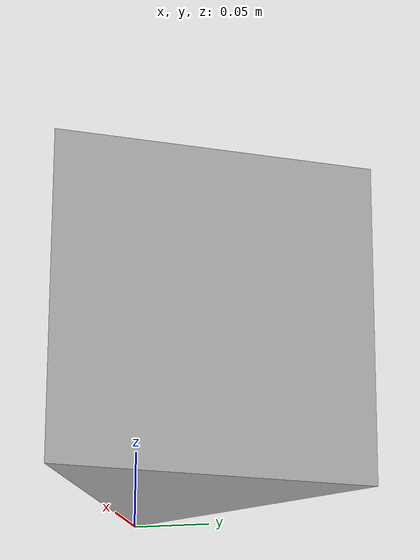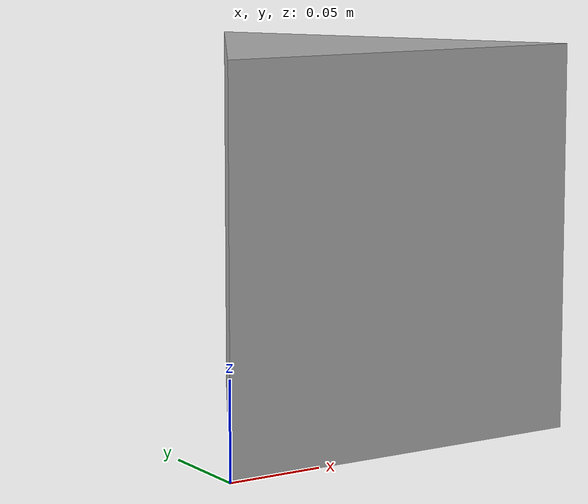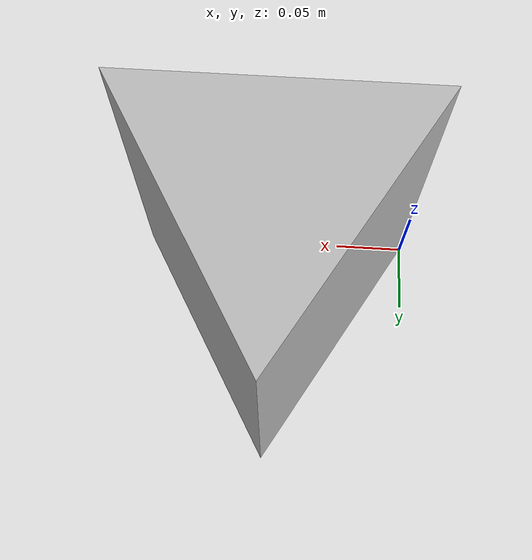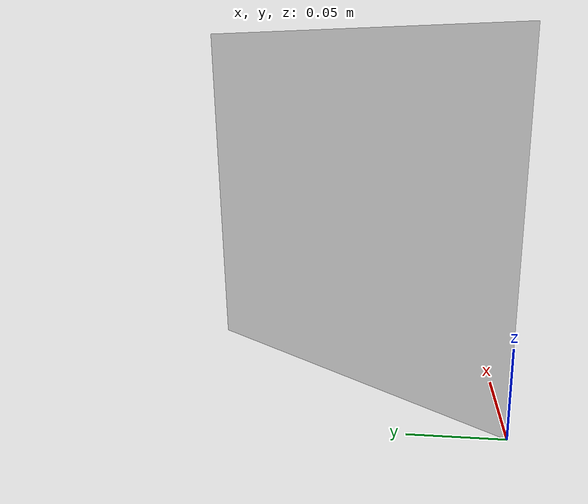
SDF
<?xml version="1.0" ?>
<sdf version="1.6">
  <model name="post0">
    <static>true</static>
    <link name="link">
      <collision name="collision">
        <geometry>
          <mesh>
            <uri>model://post0/meshes/textured.dae</uri>
          </mesh>
        </geometry>
      </collision>
      <visual name="visual">
        <geometry>
          <mesh>
            <uri>model://post0/meshes/textured.dae</uri>
          </mesh>
        </geometry>
      </visual>
    </link>
  </model>
</sdf>
